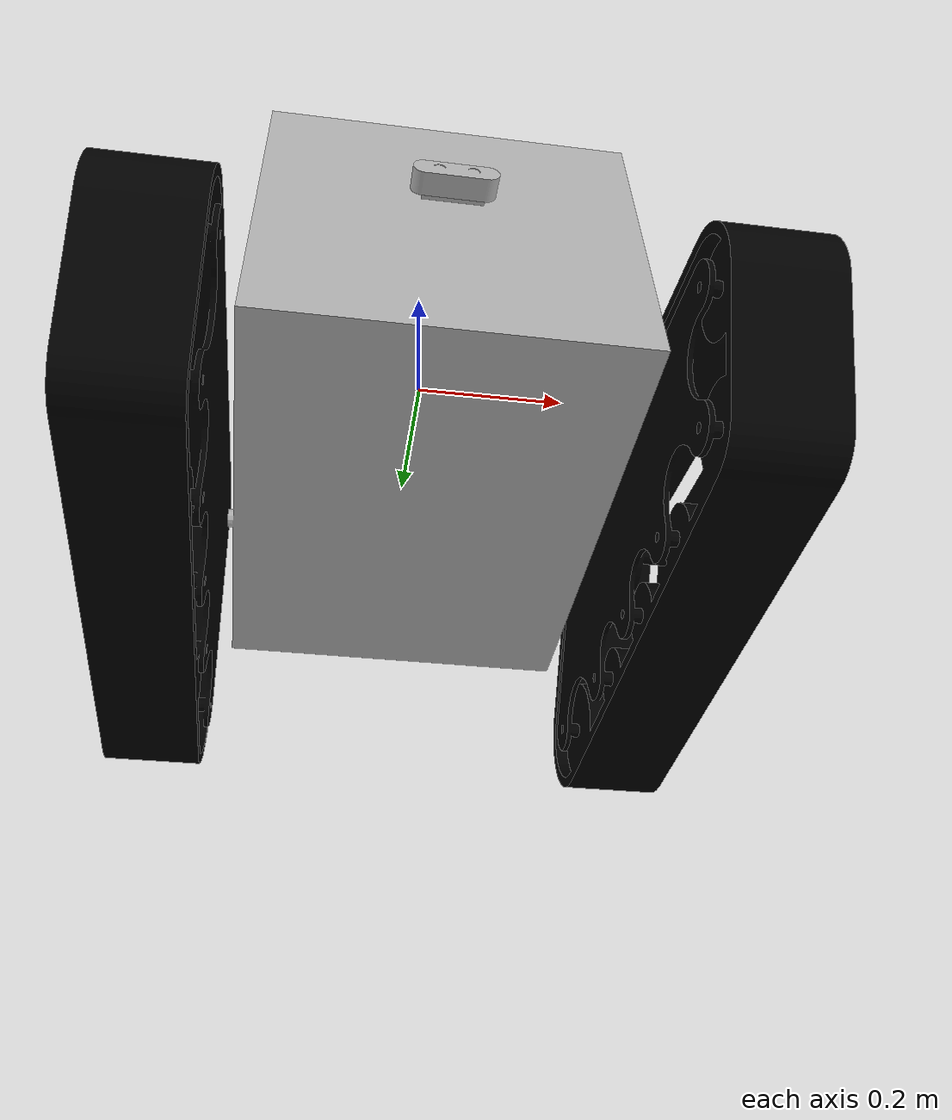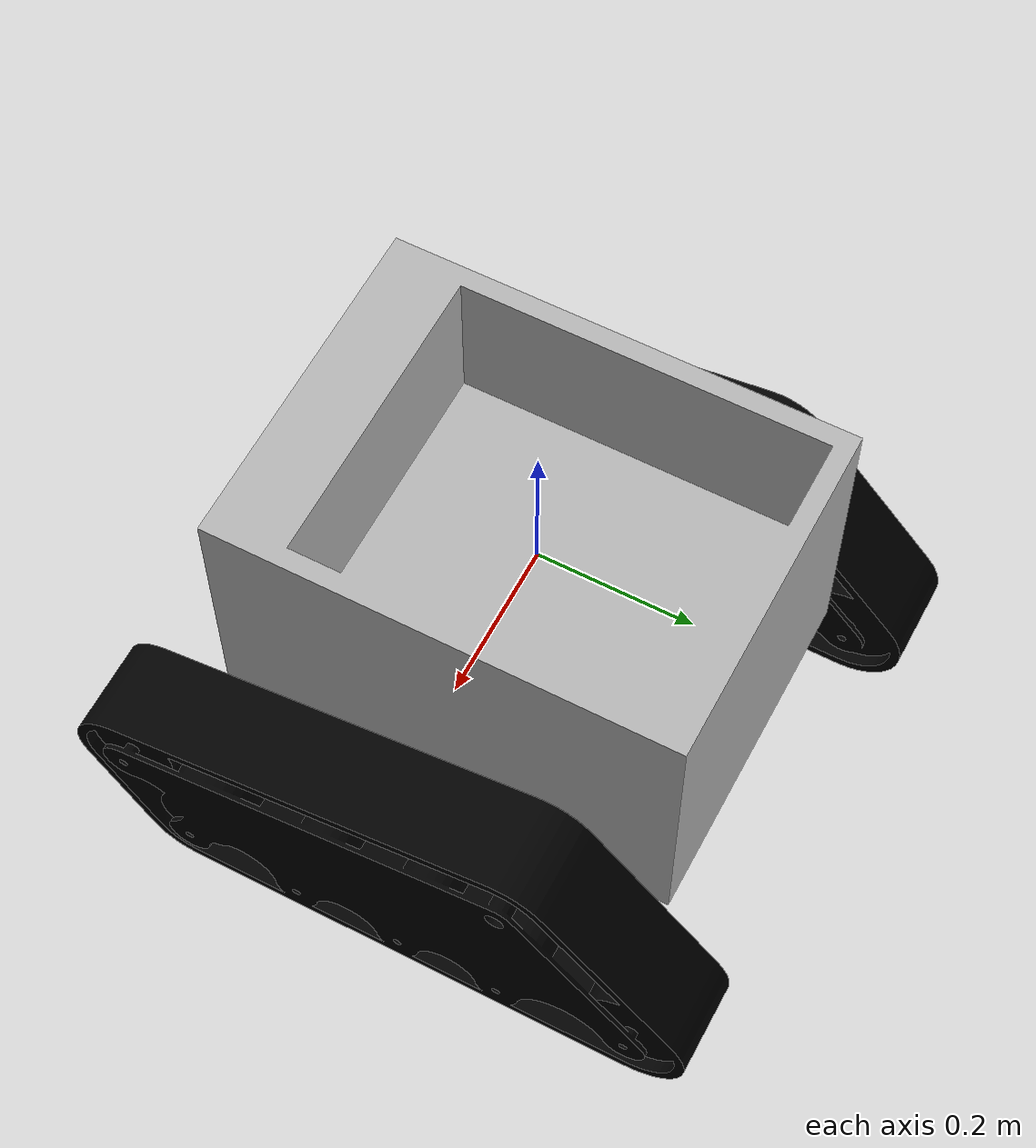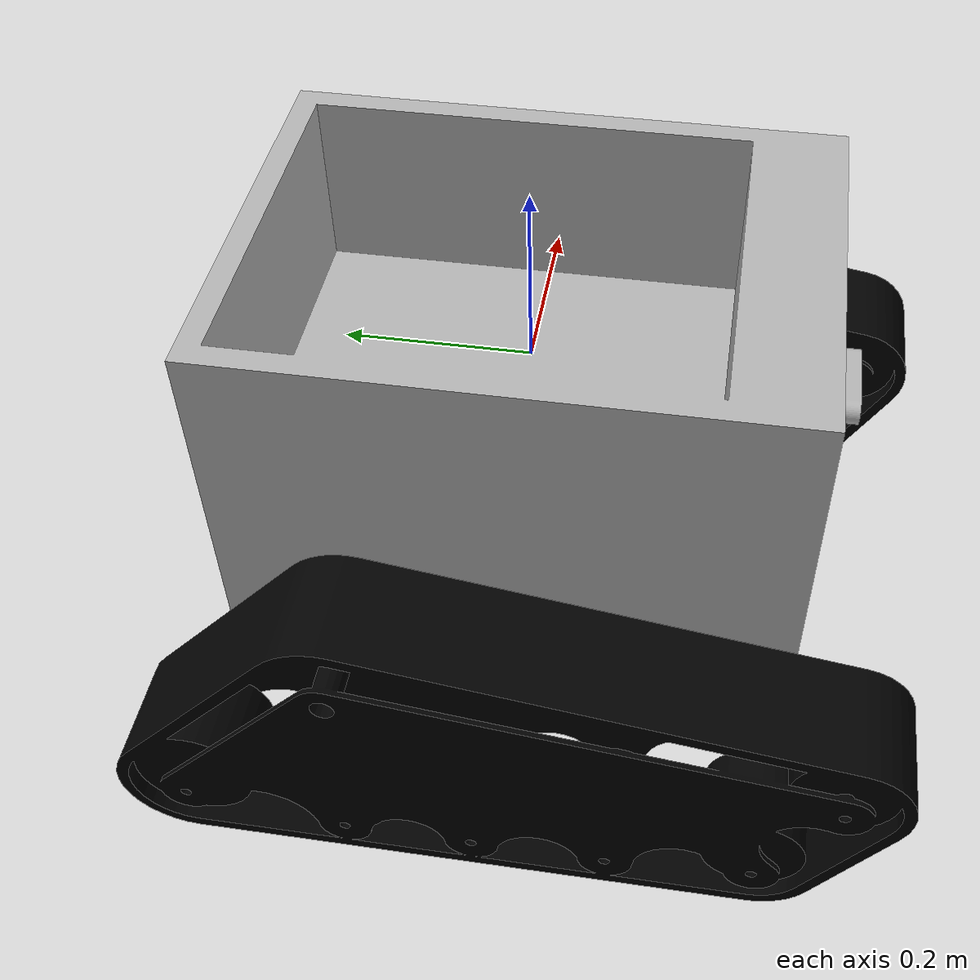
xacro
<?xml version="1.0" ?>
<robot name="tracked_robot" xmlns:xacro="http://www.ros.org/wiki/xacro">

<xacro:include filename="$(find autonomy)/urdf/materials.xacro" />
<xacro:include filename="$(find autonomy)/urdf/tracked_robot.trans" />
<xacro:include filename="$(find autonomy)/urdf/tracked_robot.gazebo" />
<link name="base_link">
  <inertial>
    <origin xyz="-0.000697957365761748 -0.02693181329873898 -0.10360548608478944" rpy="0 0 0"/>
    <mass value="25.21160692719502"/>
    <inertia ixx="8.567394" iyy="5.528814" izz="10.16907" ixy="0.002631" iyz="0.595537" ixz="0.007196"/>
  </inertial>
  <visual>
    <origin xyz="0 0 0" rpy="0 0 0"/>
    <geometry>
      <mesh filename="package://autonomy/meshes/base_link.stl" scale="0.001 0.001 0.001"/>
    </geometry>
    <material name="silver"/>
  </visual>
  <collision>
    <origin xyz="0 0 0" rpy="0 0 0"/>
    <geometry>
      <mesh filename="package://autonomy/meshes/base_link.stl" scale="0.001 0.001 0.001"/>
    </geometry>
  </collision>
</link>

<link name="left_track_link_1">
  <inertial>
    <origin xyz="0.017500185545245905 -0.15584208305997968 -0.17378022497017792" rpy="0 0 0"/>
    <mass value="4.070297509831398"/>
    <inertia ixx="0.658697" iyy="0.100739" izz="0.583862" ixy="0.0" iyz="0.033262" ixz="0.0"/>
  </inertial>
  <visual>
    <origin xyz="-0.294546 -0.1326 0.106" rpy="0 0 0"/>
    <geometry>
      <mesh filename="package://autonomy/meshes/left_track_link_1.stl" scale="0.001 0.001 0.001"/>
    </geometry>
    <material name="black"/>
  </visual>
  <collision>
    <origin xyz="-0.294546 -0.1326 0.106" rpy="0 0 0"/>
    <geometry>
      <mesh filename="package://autonomy/meshes/left_track_link_1.stl" scale="0.001 0.001 0.001"/>
    </geometry>
  </collision>
</link>

<link name="right_track_link_1">
  <inertial>
    <origin xyz="-0.017500185545247016 -0.15584208305997946 -0.17378022497017764" rpy="0 0 0"/>
    <mass value="4.070297509831398"/>
    <inertia ixx="0.658697" iyy="0.100739" izz="0.583862" ixy="0.0" iyz="0.033262" ixz="-0.0"/>
  </inertial>
  <visual>
    <origin xyz="0.294546 -0.1326 0.106" rpy="0 0 0"/>
    <geometry>
      <mesh filename="package://autonomy/meshes/right_track_link_1.stl" scale="0.001 0.001 0.001"/>
    </geometry>
    <material name="black"/>
  </visual>
  <collision>
    <origin xyz="0.294546 -0.1326 0.106" rpy="0 0 0"/>
    <geometry>
      <mesh filename="package://autonomy/meshes/right_track_link_1.stl" scale="0.001 0.001 0.001"/>
    </geometry>
  </collision>
</link>

<link name="camera_link_1">
  <inertial>
    <origin xyz="7.161695076305528e-15 -0.014933658529232063 -3.351268915152694e-16" rpy="0 0 0"/>
    <mass value="0.20856866728234189"/>
    <inertia ixx="2.7e-05" iyy="0.000175" izz="0.000179" ixy="0.0" iyz="0.0" ixz="-0.0"/>
  </inertial>
  <visual>
    <origin xyz="0.0 0.3117 -0.0007" rpy="0 0 0"/>
    <geometry>
      <mesh filename="package://autonomy/meshes/camera_link_1.stl" scale="0.001 0.001 0.001"/>
    </geometry>
    <material name="silver"/>
  </visual>
  <collision>
    <origin xyz="0.0 0.3117 -0.0007" rpy="0 0 0"/>
    <geometry>
      <mesh filename="package://autonomy/meshes/camera_link_1.stl" scale="0.001 0.001 0.001"/>
    </geometry>
  </collision>
</link>

<joint name="left_track_j" type="fixed">
  <origin xyz="0.294546 0.1326 -0.106" rpy="0 0 0"/>
  <parent link="base_link"/>
  <child link="left_track_link_1"/>
</joint>

<joint name="right_track_j" type="fixed">
  <origin xyz="-0.294546 0.1326 -0.106" rpy="0 0 0"/>
  <parent link="base_link"/>
  <child link="right_track_link_1"/>
</joint>

<joint name="camera_j" type="fixed">
  <origin xyz="0.0 -0.3117 0.0007" rpy="0 0 0"/>
  <parent link="base_link"/>
  <child link="camera_link_1"/>
</joint>

<gazebo>
  <plugin filename="libSimpleTrackedVehiclePlugin.so" name="tracked_robot">
    <body>base_link</body>
    <left_track>left_track_link_1</left_track>
    <right_track>right_track_link_1</right_track>
    <track_mu>2</track_mu>
    <track_mu2>0.5</track_mu2>
  </plugin>

  <plugin filename="libKeysToCmdVelPlugin.so" name="keyboard_control">
    <publish_as_twist>true</publish_as_twist>
    <cmd_vel_topic>~/tracked_robot/cmd_vel_twist</cmd_vel_topic>
  </plugin>
</gazebo>

</robot>

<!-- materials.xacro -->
<robot name="tracked_robot" xmlns:xacro="http://www.ros.org/wiki/xacro" >

<material name="silver">
  <color rgba="0.700 0.700 0.700 1.000"/>
</material>

<material name="black">
  <color rgba="0 0 0 1.000"/>
</material>

</robot>

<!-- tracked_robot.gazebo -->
<robot name="tracked_robot" xmlns:xacro="http://www.ros.org/wiki/xacro" >

<xacro:property name="body_color" value="Gazebo/Silver" />
<xacro:property name="black" value="Gazebo/Black" />

<gazebo>
  <plugin name="control" filename="libgazebo_ros_control.so"/>
</gazebo>
<gazebo reference="base_link">
  <material>${body_color}</material>
  <mu1>0.2</mu1>
  <mu2>0.2</mu2>
  <selfCollide>true</selfCollide>
  <gravity>true</gravity>
</gazebo>

<gazebo reference="left_track_link_1">
  <material>${black}</material>
  <mu1>0.2</mu1>
  <mu2>0.2</mu2>
  <selfCollide>true</selfCollide>
</gazebo>

<gazebo reference="right_track_link_1">
  <material>${black}</material>
  <mu1>0.2</mu1>
  <mu2>0.2</mu2>
  <selfCollide>true</selfCollide>
</gazebo>

<gazebo reference="camera_link_1">
  <material>${body_color}</material>
  <mu1>0.2</mu1>
  <mu2>0.2</mu2>
  <selfCollide>true</selfCollide>
</gazebo>

<gazebo reference="left_track_j">
    <preserveFixedJoint>true</preserveFixedJoint>
</gazebo>

<gazebo reference="right_track_j">
    <preserveFixedJoint>true</preserveFixedJoint>
</gazebo>

</robot>
